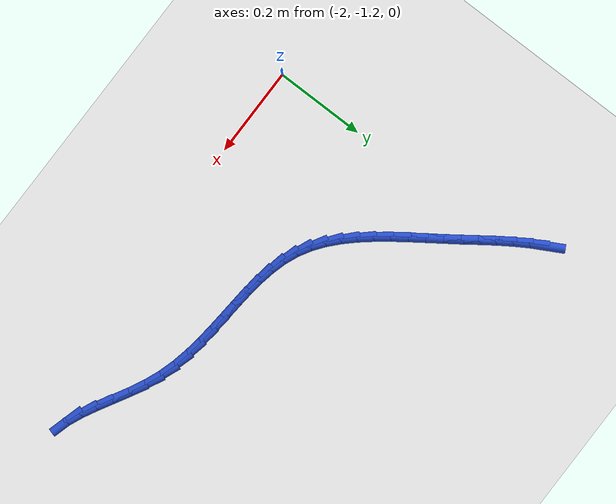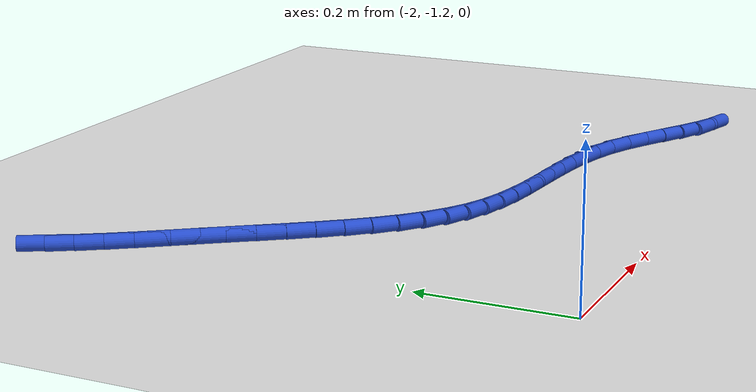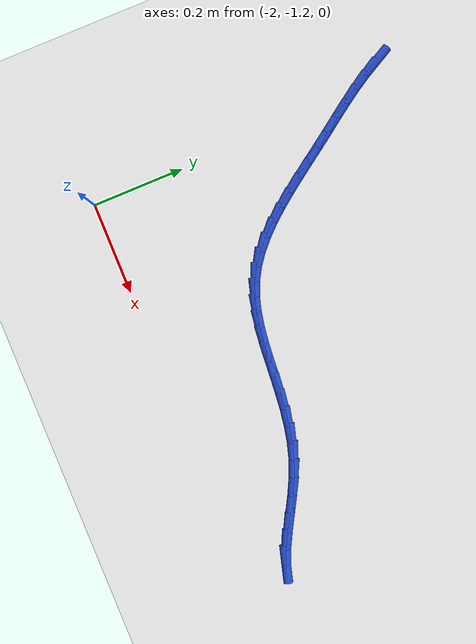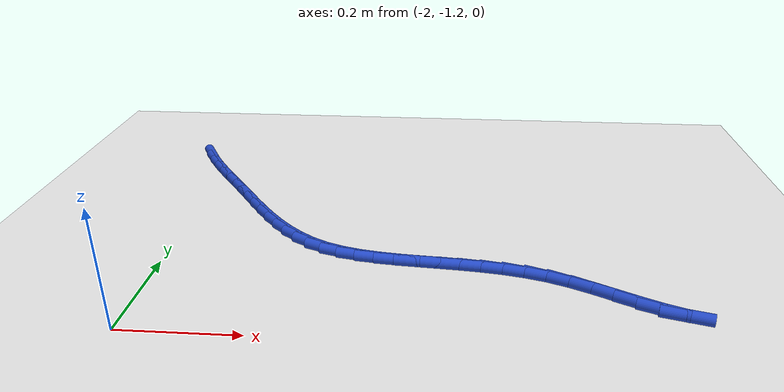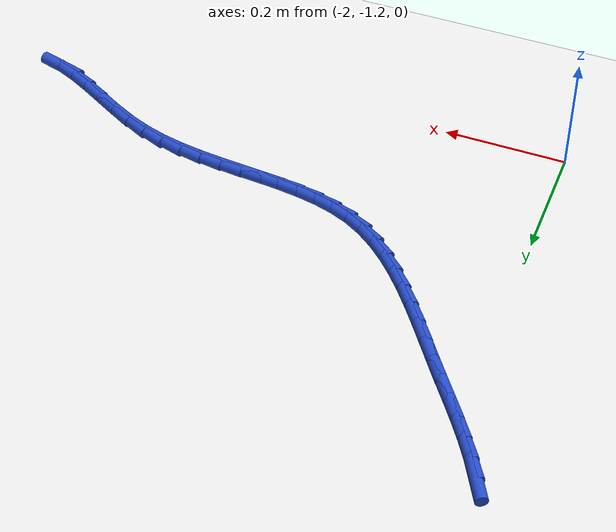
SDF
<sdf version="1.6">
 <world name="default">
  <model name="ground_plane">
   <static>1</static>
   <link name="link">
    <collision name="collision">
     <geometry><plane><normal>0 0 1</normal><size>100 100</size></plane></geometry>
     <surface><friction><ode><mu>100</mu><mu2>50</mu2></ode></friction></surface>
    </collision>
    <visual name="visual">
     <cast_shadows>0</cast_shadows>
     <geometry><plane><normal>0 0 1</normal><size>100 100</size></plane></geometry>
     <material>
      <script><uri>file://media/materials/scripts/gazebo.material</uri><name>Gazebo/WhiteGlow</name></script>
     </material>
    </visual>
   </link>
  </model>
  <model name="line">
   <link name="link_117">
    <pose>-2.0518278798865217 -0.5402703886951777 0.01 0 1.57 -1.0718728004895934</pose>
    <collision name="collision">
     <geometry><cylinder><radius>0.01</radius><length>0.08</length></cylinder></geometry>
    </collision>
    <visual name="visual">
     <material>
      <script><name>Gazebo/Blue</name><uri>file://media/materials/scripts/gazebo.material</uri></script>
     </material>
     <geometry><cylinder><radius>0.01</radius><length>0.08</length></cylinder></geometry>
    </visual>
   </link>
   <link name="link_118">
    <pose>-2.0356002667419197 -0.5700509857662881 0.01 0 1.57 -1.0176628361391793</pose>
    <collision name="collision">
     <geometry><cylinder><radius>0.01</radius><length>0.08</length></cylinder></geometry>
    </collision>
    <visual name="visual">
     <material>
      <script><name>Gazebo/Blue</name><uri>file://media/materials/scripts/gazebo.material</uri></script>
     </material>
     <geometry><cylinder><radius>0.01</radius><length>0.08</length></cylinder></geometry>
    </visual>
   </link>
   <link name="link_119">
    <pose>-2.0173406444963393 -0.5996248214648197 0.01 0 1.57 -0.979651821291961</pose>
    <collision name="collision">
     <geometry><cylinder><radius>0.01</radius><length>0.08</length></cylinder></geometry>
    </collision>
    <visual name="visual">
     <material>
      <script><name>Gazebo/Blue</name><uri>file://media/materials/scripts/gazebo.material</uri></script>
     </material>
     <geometry><cylinder><radius>0.01</radius><length>0.08</length></cylinder></geometry>
    </visual>
   </link>
   <link name="link_120">
    <pose>-1.9975323290297708 -0.629135976483646 0.01 0 1.57 -0.9564755950218115</pose>
    <collision name="collision">
     <geometry><cylinder><radius>0.01</radius><length>0.08</length></cylinder></geometry>
    </collision>
    <visual name="visual">
     <material>
      <script><name>Gazebo/Blue</name><uri>file://media/materials/scripts/gazebo.material</uri></script>
     </material>
     <geometry><cylinder><radius>0.01</radius><length>0.08</length></cylinder></geometry>
    </visual>
   </link>
   <link name="link_121">
    <pose>-1.9766586362222067 -0.6587285315156411 0.01 0 1.57 -0.9470655773168715</pose>
    <collision name="collision">
     <geometry><cylinder><radius>0.01</radius><length>0.08</length></cylinder></geometry>
    </collision>
    <visual name="visual">
     <material>
      <script><name>Gazebo/Blue</name><uri>file://media/materials/scripts/gazebo.material</uri></script>
     </material>
     <geometry><cylinder><radius>0.01</radius><length>0.08</length></cylinder></geometry>
    </visual>
   </link>
   <link name="link_122">
    <pose>-1.9552028819536376 -0.6885465672536784 0.01 0 1.57 -0.9506739984556069</pose>
    <collision name="collision">
     <geometry><cylinder><radius>0.01</radius><length>0.08</length></cylinder></geometry>
    </collision>
    <visual name="visual">
     <material>
      <script><name>Gazebo/Blue</name><uri>file://media/materials/scripts/gazebo.material</uri></script>
     </material>
     <geometry><cylinder><radius>0.01</radius><length>0.08</length></cylinder></geometry>
    </visual>
   </link>
   <link name="link_123">
    <pose>-1.9336469898511612 -0.7187329309912645 0.01 0 1.57 -0.9593641575644055</pose>
    <collision name="collision">
     <geometry><cylinder><radius>0.01</radius><length>0.08</length></cylinder></geometry>
    </collision>
    <visual name="visual">
     <material>
      <script><name>Gazebo/Blue</name><uri>file://media/materials/scripts/gazebo.material</uri></script>
     </material>
     <geometry><cylinder><radius>0.01</radius><length>0.08</length></cylinder></geometry>
    </visual>
   </link>
   <link name="link_124">
    <pose>-1.912259142227969 -0.749241116203667 0.01 0 1.57 -0.9574406863460099</pose>
    <collision name="collision">
     <geometry><cylinder><radius>0.01</radius><length>0.08</length></cylinder></geometry>
    </collision>
    <visual name="visual">
     <material>
      <script><name>Gazebo/Blue</name><uri>file://media/materials/scripts/gazebo.material</uri></script>
     </material>
     <geometry><cylinder><radius>0.01</radius><length>0.08</length></cylinder></geometry>
    </visual>
   </link>
   <link name="link_125">
    <pose>-1.890865500864609 -0.7796330295733801 0.01 0 1.57 -0.9428070017644644</pose>
    <collision name="collision">
     <geometry><cylinder><radius>0.01</radius><length>0.08</length></cylinder></geometry>
    </collision>
    <visual name="visual">
     <material>
      <script><name>Gazebo/Blue</name><uri>file://media/materials/scripts/gazebo.material</uri></script>
     </material>
     <geometry><cylinder><radius>0.01</radius><length>0.08</length></cylinder></geometry>
    </visual>
   </link>
   <link name="link_126">
    <pose>-1.8692374744727616 -0.8094220719397331 0.01 0 1.57 -0.9147853608650802</pose>
    <collision name="collision">
     <geometry><cylinder><radius>0.01</radius><length>0.08</length></cylinder></geometry>
    </collision>
    <visual name="visual">
     <material>
      <script><name>Gazebo/Blue</name><uri>file://media/materials/scripts/gazebo.material</uri></script>
     </material>
     <geometry><cylinder><radius>0.01</radius><length>0.08</length></cylinder></geometry>
    </visual>
   </link>
   <link name="link_127">
    <pose>-1.8471464717641086 -0.8381216441420555 0.01 0 1.57 -0.8721618388997093</pose>
    <collision name="collision">
     <geometry><cylinder><radius>0.01</radius><length>0.08</length></cylinder></geometry>
    </collision>
    <visual name="visual">
     <material>
      <script><name>Gazebo/Blue</name><uri>file://media/materials/scripts/gazebo.material</uri></script>
     </material>
     <geometry><cylinder><radius>0.01</radius><length>0.08</length></cylinder></geometry>
    </visual>
   </link>
   <link name="link_128">
    <pose>-1.82436390145033 -0.8652451470196761 0.01 0 1.57 -0.8132417847786135</pose>
    <collision name="collision">
     <geometry><cylinder><radius>0.01</radius><length>0.08</length></cylinder></geometry>
    </collision>
    <visual name="visual">
     <material>
      <script><name>Gazebo/Blue</name><uri>file://media/materials/scripts/gazebo.material</uri></script>
     </material>
     <geometry><cylinder><radius>0.01</radius><length>0.08</length></cylinder></geometry>
    </visual>
   </link>
   <link name="link_129">
    <pose>-1.8006611722431072 -0.8903059814119244 0.01 0 1.57 -0.7360345367531783</pose>
    <collision name="collision">
     <geometry><cylinder><radius>0.01</radius><length>0.08</length></cylinder></geometry>
    </collision>
    <visual name="visual">
     <material>
      <script><name>Gazebo/Blue</name><uri>file://media/materials/scripts/gazebo.material</uri></script>
     </material>
     <geometry><cylinder><radius>0.01</radius><length>0.08</length></cylinder></geometry>
    </visual>
   </link>
   <link name="link_130">
    <pose>-1.775809692854122 -0.9128175481581298 0.01 0 1.57 -0.6387034758028983</pose>
    <collision name="collision">
     <geometry><cylinder><radius>0.01</radius><length>0.08</length></cylinder></geometry>
    </collision>
    <visual name="visual">
     <material>
      <script><name>Gazebo/Blue</name><uri>file://media/materials/scripts/gazebo.material</uri></script>
     </material>
     <geometry><cylinder><radius>0.01</radius><length>0.08</length></cylinder></geometry>
    </visual>
   </link>
   <link name="link_131">
    <pose>-1.7495808719950545 -0.9322932480976213 0.01 0 1.57 -0.5204363966589151</pose>
    <collision name="collision">
     <geometry><cylinder><radius>0.01</radius><length>0.08</length></cylinder></geometry>
    </collision>
    <visual name="visual">
     <material>
      <script><name>Gazebo/Blue</name><uri>file://media/materials/scripts/gazebo.material</uri></script>
     </material>
     <geometry><cylinder><radius>0.01</radius><length>0.08</length></cylinder></geometry>
    </visual>
   </link>
   <link name="link_132">
    <pose>-1.7217461236278377 -0.9482464957029352 0.01 0 1.57 -0.3901346355275325</pose>
    <collision name="collision">
     <geometry><cylinder><radius>0.01</radius><length>0.08</length></cylinder></geometry>
    </collision>
    <visual name="visual">
     <material>
      <script><name>Gazebo/Blue</name><uri>file://media/materials/scripts/gazebo.material</uri></script>
     </material>
     <geometry><cylinder><radius>0.01</radius><length>0.08</length></cylinder></geometry>
    </visual>
   </link>
   <link name="link_133">
    <pose>-1.6921620230880985 -0.960411841972999 0.01 0 1.57 -0.27790543646084637</pose>
    <collision name="collision">
     <geometry><cylinder><radius>0.01</radius><length>0.08</length></cylinder></geometry>
    </collision>
    <visual name="visual">
     <material>
      <script><name>Gazebo/Blue</name><uri>file://media/materials/scripts/gazebo.material</uri></script>
     </material>
     <geometry><cylinder><radius>0.01</radius><length>0.08</length></cylinder></geometry>
    </visual>
   </link>
   <link name="link_134">
    <pose>-1.6609863212842597 -0.9693058933987566 0.01 0 1.57 -0.1915847757808614</pose>
    <collision name="collision">
     <geometry><cylinder><radius>0.01</radius><length>0.08</length></cylinder></geometry>
    </collision>
    <visual name="visual">
     <material>
      <script><name>Gazebo/Blue</name><uri>file://media/materials/scripts/gazebo.material</uri></script>
     </material>
     <geometry><cylinder><radius>0.01</radius><length>0.08</length></cylinder></geometry>
    </visual>
   </link>
   <link name="link_135">
    <pose>-1.6284433156329485 -0.975618056216262 0.01 0 1.57 -0.13045708756642405</pose>
    <collision name="collision">
     <geometry><cylinder><radius>0.01</radius><length>0.08</length></cylinder></geometry>
    </collision>
    <visual name="visual">
     <material>
      <script><name>Gazebo/Blue</name><uri>file://media/materials/scripts/gazebo.material</uri></script>
     </material>
     <geometry><cylinder><radius>0.01</radius><length>0.08</length></cylinder></geometry>
    </visual>
   </link>
   <link name="link_136">
    <pose>-1.5947573035507896 -0.9800377366615682 0.01 0 1.57 -0.09268642797118863</pose>
    <collision name="collision">
     <geometry><cylinder><radius>0.01</radius><length>0.08</length></cylinder></geometry>
    </collision>
    <visual name="visual">
     <material>
      <script><name>Gazebo/Blue</name><uri>file://media/materials/scripts/gazebo.material</uri></script>
     </material>
     <geometry><cylinder><radius>0.01</radius><length>0.08</length></cylinder></geometry>
    </visual>
   </link>
   <link name="link_137">
    <pose>-1.5601525824544094 -0.9832543409707292 0.01 0 1.57 -0.07642312983473398</pose>
    <collision name="collision">
     <geometry><cylinder><radius>0.01</radius><length>0.08</length></cylinder></geometry>
    </collision>
    <visual name="visual">
     <material>
      <script><name>Gazebo/Blue</name><uri>file://media/materials/scripts/gazebo.material</uri></script>
     </material>
     <geometry><cylinder><radius>0.01</radius><length>0.08</length></cylinder></geometry>
    </visual>
   </link>
   <link name="link_138">
    <pose>-1.5248534497604336 -0.9859572753797985 0.01 0 1.57 -0.08030585272299226</pose>
    <collision name="collision">
     <geometry><cylinder><radius>0.01</radius><length>0.08</length></cylinder></geometry>
    </collision>
    <visual name="visual">
     <material>
      <script><name>Gazebo/Blue</name><uri>file://media/materials/scripts/gazebo.material</uri></script>
     </material>
     <geometry><cylinder><radius>0.01</radius><length>0.08</length></cylinder></geometry>
    </visual>
   </link>
   <link name="link_139">
    <pose>-1.4890842028854883 -0.98883594612483 0.01 0 1.57 -0.10357929822347</pose>
    <collision name="collision">
     <geometry><cylinder><radius>0.01</radius><length>0.08</length></cylinder></geometry>
    </collision>
    <visual name="visual">
     <material>
      <script><name>Gazebo/Blue</name><uri>file://media/materials/scripts/gazebo.material</uri></script>
     </material>
     <geometry><cylinder><radius>0.01</radius><length>0.08</length></cylinder></geometry>
    </visual>
   </link>
   <link name="link_140">
    <pose>-1.4530691392461987 -0.992579759441877 0.01 0 1.57 -0.145981418386988</pose>
    <collision name="collision">
     <geometry><cylinder><radius>0.01</radius><length>0.08</length></cylinder></geometry>
    </collision>
    <visual name="visual">
     <material>
      <script><name>Gazebo/Blue</name><uri>file://media/materials/scripts/gazebo.material</uri></script>
     </material>
     <geometry><cylinder><radius>0.01</radius><length>0.08</length></cylinder></geometry>
    </visual>
   </link>
   <link name="link_141">
    <pose>-1.4170325562591914 -0.997878121566993 0.01 0 1.57 -0.20745235449484642</pose>
    <collision name="collision">
     <geometry><cylinder><radius>0.01</radius><length>0.08</length></cylinder></geometry>
    </collision>
    <visual name="visual">
     <material>
      <script><name>Gazebo/Blue</name><uri>file://media/materials/scripts/gazebo.material</uri></script>
     </material>
     <geometry><cylinder><radius>0.01</radius><length>0.08</length></cylinder></geometry>
    </visual>
   </link>
   <link name="link_142">
    <pose>-1.3811987513410906 -1.0054204387362318 0.01 0 1.57 -0.28766063805924963</pose>
    <collision name="collision">
     <geometry><cylinder><radius>0.01</radius><length>0.08</length></cylinder></geometry>
    </collision>
    <visual name="visual">
     <material>
      <script><name>Gazebo/Blue</name><uri>file://media/materials/scripts/gazebo.material</uri></script>
     </material>
     <geometry><cylinder><radius>0.01</radius><length>0.08</length></cylinder></geometry>
    </visual>
   </link>
   <link name="link_143">
    <pose>-1.3457920219085238 -1.015896117185647 0.01 0 1.57 -0.3833844206662145</pose>
    <collision name="collision">
     <geometry><cylinder><radius>0.01</radius><length>0.08</length></cylinder></geometry>
    </collision>
    <visual name="visual">
     <material>
      <script><name>Gazebo/Blue</name><uri>file://media/materials/scripts/gazebo.material</uri></script>
     </material>
     <geometry><cylinder><radius>0.01</radius><length>0.08</length></cylinder></geometry>
    </visual>
   </link>
   <link name="link_144">
    <pose>-1.3110286246221 -1.02991766884705 0.01 0 1.57 -0.462882648950027</pose>
    <collision name="collision">
     <geometry><cylinder><radius>0.01</radius><length>0.08</length></cylinder></geometry>
    </collision>
    <visual name="visual">
     <material>
      <script><name>Gazebo/Blue</name><uri>file://media/materials/scripts/gazebo.material</uri></script>
     </material>
     <geometry><cylinder><radius>0.01</radius><length>0.08</length></cylinder></geometry>
    </visual>
   </link>
   <link name="link_145">
    <pose>-1.2769995503075662 -1.0468996798355628 0.01 0 1.57 -0.5049966232615141</pose>
    <collision name="collision">
     <geometry><cylinder><radius>0.01</radius><length>0.08</length></cylinder></geometry>
    </collision>
    <visual name="visual">
     <material>
      <script><name>Gazebo/Blue</name><uri>file://media/materials/scripts/gazebo.material</uri></script>
     </material>
     <geometry><cylinder><radius>0.01</radius><length>0.08</length></cylinder></geometry>
    </visual>
   </link>
   <link name="link_146">
    <pose>-1.2436967625879805 -1.0653097322984308 0.01 0 1.57 -0.5112118128813103</pose>
    <collision name="collision">
     <geometry><cylinder><radius>0.01</radius><length>0.08</length></cylinder></geometry>
    </collision>
    <visual name="visual">
     <material>
      <script><name>Gazebo/Blue</name><uri>file://media/materials/scripts/gazebo.material</uri></script>
     </material>
     <geometry><cylinder><radius>0.01</radius><length>0.08</length></cylinder></geometry>
    </visual>
   </link>
   <link name="link_147">
    <pose>-1.2111095231055335 -1.0835895691535384 0.01 0 1.57 -0.4798278772813238</pose>
    <collision name="collision">
     <geometry><cylinder><radius>0.01</radius><length>0.08</length></cylinder></geometry>
    </collision>
    <visual name="visual">
     <material>
      <script><name>Gazebo/Blue</name><uri>file://media/materials/scripts/gazebo.material</uri></script>
     </material>
     <geometry><cylinder><radius>0.01</radius><length>0.08</length></cylinder></geometry>
    </visual>
   </link>
   <link name="link_148">
    <pose>-1.1792270935024158 -1.1001809333187695 0.01 0 1.57 -0.4043009906563145</pose>
    <collision name="collision">
     <geometry><cylinder><radius>0.01</radius><length>0.08</length></cylinder></geometry>
    </collision>
    <visual name="visual">
     <material>
      <script><name>Gazebo/Blue</name><uri>file://media/materials/scripts/gazebo.material</uri></script>
     </material>
     <geometry><cylinder><radius>0.01</radius><length>0.08</length></cylinder></geometry>
    </visual>
   </link>
   <link name="link_149">
    <pose>-1.1480387354208181 -1.1135255677120084 0.01 0 1.57 -0.2729552184343028</pose>
    <collision name="collision">
     <geometry><cylinder><radius>0.01</radius><length>0.08</length></cylinder></geometry>
    </collision>
    <visual name="visual">
     <material>
      <script><name>Gazebo/Blue</name><uri>file://media/materials/scripts/gazebo.material</uri></script>
     </material>
     <geometry><cylinder><radius>0.01</radius><length>0.08</length></cylinder></geometry>
    </visual>
   </link>
  </model>
 </world>
</sdf>
